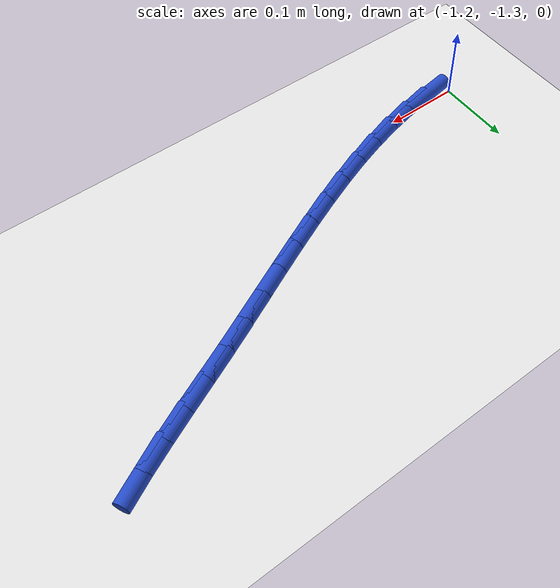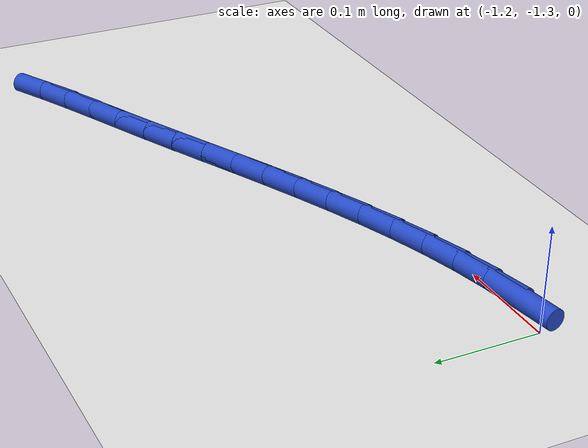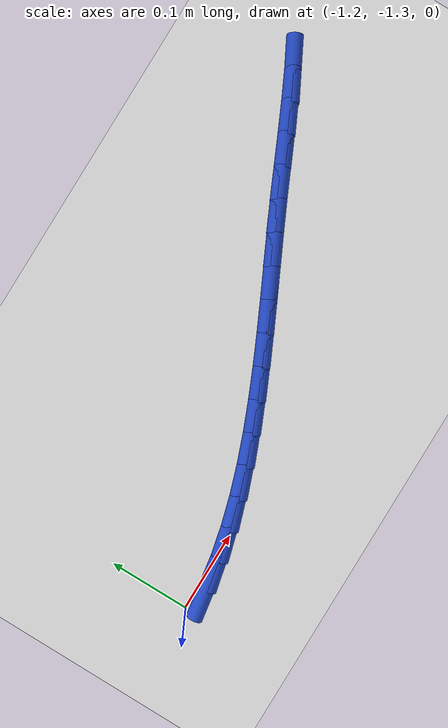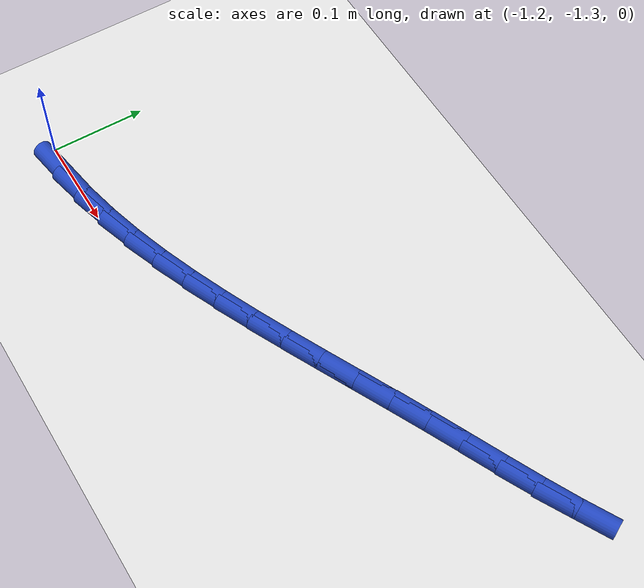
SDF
<sdf version="1.6">
 <world name="default">
  <model name="ground_plane">
   <static>1</static>
   <link name="link">
    <collision name="collision">
     <geometry><plane><normal>0 0 1</normal><size>100 100</size></plane></geometry>
     <surface><friction><ode><mu>100</mu><mu2>50</mu2></ode></friction></surface>
    </collision>
    <visual name="visual">
     <cast_shadows>0</cast_shadows>
     <geometry><plane><normal>0 0 1</normal><size>100 100</size></plane></geometry>
     <material>
      <script><uri>file://media/materials/scripts/gazebo.material</uri><name>Gazebo/WhiteGlow</name></script>
     </material>
    </visual>
   </link>
  </model>
  <model name="line">
   <link name="link_150">
    <pose>-1.161498635835793 -1.3066927074365728 0.01 0 1.57 0.16170845640949366</pose>
    <collision name="collision">
     <geometry><cylinder><radius>0.01</radius><length>0.08</length></cylinder></geometry>
    </collision>
    <visual name="visual">
     <material>
      <script><name>Gazebo/Blue</name><uri>file://media/materials/scripts/gazebo.material</uri></script>
     </material>
     <geometry><cylinder><radius>0.01</radius><length>0.08</length></cylinder></geometry>
    </visual>
   </link>
   <link name="link_151">
    <pose>-1.1255199254641324 -1.3008233962126554 0.01 0 1.57 0.22316943241584936</pose>
    <collision name="collision">
     <geometry><cylinder><radius>0.01</radius><length>0.08</length></cylinder></geometry>
    </collision>
    <visual name="visual">
     <material>
      <script><name>Gazebo/Blue</name><uri>file://media/materials/scripts/gazebo.material</uri></script>
     </material>
     <geometry><cylinder><radius>0.01</radius><length>0.08</length></cylinder></geometry>
    </visual>
   </link>
   <link name="link_152">
    <pose>-1.0896137281921183 -1.2926744949773905 0.01 0 1.57 0.2766547158146676</pose>
    <collision name="collision">
     <geometry><cylinder><radius>0.01</radius><length>0.08</length></cylinder></geometry>
    </collision>
    <visual name="visual">
     <material>
      <script><name>Gazebo/Blue</name><uri>file://media/materials/scripts/gazebo.material</uri></script>
     </material>
     <geometry><cylinder><radius>0.01</radius><length>0.08</length></cylinder></geometry>
    </visual>
   </link>
   <link name="link_153">
    <pose>-1.0537803415617388 -1.2825001102500515 0.01 0 1.57 0.3223964391644984</pose>
    <collision name="collision">
     <geometry><cylinder><radius>0.01</radius><length>0.08</length></cylinder></geometry>
    </collision>
    <visual name="visual">
     <material>
      <script><name>Gazebo/Blue</name><uri>file://media/materials/scripts/gazebo.material</uri></script>
     </material>
     <geometry><cylinder><radius>0.01</radius><length>0.08</length></cylinder></geometry>
    </visual>
   </link>
   <link name="link_154">
    <pose>-1.0180200631149803 -1.270554348549912 0.01 0 1.57 0.36074572297174184</pose>
    <collision name="collision">
     <geometry><cylinder><radius>0.01</radius><length>0.08</length></cylinder></geometry>
    </collision>
    <visual name="visual">
     <material>
      <script><name>Gazebo/Blue</name><uri>file://media/materials/scripts/gazebo.material</uri></script>
     </material>
     <geometry><cylinder><radius>0.01</radius><length>0.08</length></cylinder></geometry>
    </visual>
   </link>
   <link name="link_155">
    <pose>-0.9823331903938303 -1.257091316396245 0.01 0 1.57 0.39209347384951837</pose>
    <collision name="collision">
     <geometry><cylinder><radius>0.01</radius><length>0.08</length></cylinder></geometry>
    </collision>
    <visual name="visual">
     <material>
      <script><name>Gazebo/Blue</name><uri>file://media/materials/scripts/gazebo.material</uri></script>
     </material>
     <geometry><cylinder><radius>0.01</radius><length>0.08</length></cylinder></geometry>
    </visual>
   </link>
   <link name="link_156">
    <pose>-0.9467200209402764 -1.2423651203083246 0.01 0 1.57 0.41681523394945075</pose>
    <collision name="collision">
     <geometry><cylinder><radius>0.01</radius><length>0.08</length></cylinder></geometry>
    </collision>
    <visual name="visual">
     <material>
      <script><name>Gazebo/Blue</name><uri>file://media/materials/scripts/gazebo.material</uri></script>
     </material>
     <geometry><cylinder><radius>0.01</radius><length>0.08</length></cylinder></geometry>
    </visual>
   </link>
   <link name="link_157">
    <pose>-0.9111808522963056 -1.2266298668054236 0.01 0 1.57 0.4352354093599081</pose>
    <collision name="collision">
     <geometry><cylinder><radius>0.01</radius><length>0.08</length></cylinder></geometry>
    </collision>
    <visual name="visual">
     <material>
      <script><name>Gazebo/Blue</name><uri>file://media/materials/scripts/gazebo.material</uri></script>
     </material>
     <geometry><cylinder><radius>0.01</radius><length>0.08</length></cylinder></geometry>
    </visual>
   </link>
   <link name="link_158">
    <pose>-0.8757159820039055 -1.2101396624068157 0.01 0 1.57 0.4476053346731265</pose>
    <collision name="collision">
     <geometry><cylinder><radius>0.01</radius><length>0.08</length></cylinder></geometry>
    </collision>
    <visual name="visual">
     <material>
      <script><name>Gazebo/Blue</name><uri>file://media/materials/scripts/gazebo.material</uri></script>
     </material>
     <geometry><cylinder><radius>0.01</radius><length>0.08</length></cylinder></geometry>
    </visual>
   </link>
   <link name="link_159">
    <pose>-0.8403257076050633 -1.1931486136317746 0.01 0 1.57 0.4540903539550158</pose>
    <collision name="collision">
     <geometry><cylinder><radius>0.01</radius><length>0.08</length></cylinder></geometry>
    </collision>
    <visual name="visual">
     <material>
      <script><name>Gazebo/Blue</name><uri>file://media/materials/scripts/gazebo.material</uri></script>
     </material>
     <geometry><cylinder><radius>0.01</radius><length>0.08</length></cylinder></geometry>
    </visual>
   </link>
   <link name="link_160">
    <pose>-0.8050103266417663 -1.1759108269995737 0.01 0 1.57 0.4547623456773114</pose>
    <collision name="collision">
     <geometry><cylinder><radius>0.01</radius><length>0.08</length></cylinder></geometry>
    </collision>
    <visual name="visual">
     <material>
      <script><name>Gazebo/Blue</name><uri>file://media/materials/scripts/gazebo.material</uri></script>
     </material>
     <geometry><cylinder><radius>0.01</radius><length>0.08</length></cylinder></geometry>
    </visual>
   </link>
   <link name="link_161">
    <pose>-0.7697701366560016 -1.158680409029486 0.01 0 1.57 0.4495953938450482</pose>
    <collision name="collision">
     <geometry><cylinder><radius>0.01</radius><length>0.08</length></cylinder></geometry>
    </collision>
    <visual name="visual">
     <material>
      <script><name>Gazebo/Blue</name><uri>file://media/materials/scripts/gazebo.material</uri></script>
     </material>
     <geometry><cylinder><radius>0.01</radius><length>0.08</length></cylinder></geometry>
    </visual>
   </link>
   <link name="link_162">
    <pose>-0.7346054351897565 -1.1417114662407852 0.01 0 1.57 0.4392158581749533</pose>
    <collision name="collision">
     <geometry><cylinder><radius>0.01</radius><length>0.08</length></cylinder></geometry>
    </collision>
    <visual name="visual">
     <material>
      <script><name>Gazebo/Blue</name><uri>file://media/materials/scripts/gazebo.material</uri></script>
     </material>
     <geometry><cylinder><radius>0.01</radius><length>0.08</length></cylinder></geometry>
    </visual>
   </link>
   <link name="link_163">
    <pose>-0.6995264623985878 -1.1252305599004215 0.01 0 1.57 0.4334035500368881</pose>
    <collision name="collision">
     <geometry><cylinder><radius>0.01</radius><length>0.08</length></cylinder></geometry>
    </collision>
    <visual name="visual">
     <material>
      <script><name>Gazebo/Blue</name><uri>file://media/materials/scripts/gazebo.material</uri></script>
     </material>
     <geometry><cylinder><radius>0.01</radius><length>0.08</length></cylinder></geometry>
    </visual>
   </link>
   <link name="link_164">
    <pose>-0.6646739706783711 -1.1091026770709411 0.01 0 1.57 0.43934966767067496</pose>
    <collision name="collision">
     <geometry><cylinder><radius>0.01</radius><length>0.08</length></cylinder></geometry>
    </collision>
    <visual name="visual">
     <material>
      <script><name>Gazebo/Blue</name><uri>file://media/materials/scripts/gazebo.material</uri></script>
     </material>
     <geometry><cylinder><radius>0.01</radius><length>0.08</length></cylinder></geometry>
    </visual>
   </link>
   <link name="link_165">
    <pose>-0.6302805917689183 -1.0929382601024342 0.01 0 1.57 0.4575987462990594</pose>
    <collision name="collision">
     <geometry><cylinder><radius>0.01</radius><length>0.08</length></cylinder></geometry>
    </collision>
    <visual name="visual">
     <material>
      <script><name>Gazebo/Blue</name><uri>file://media/materials/scripts/gazebo.material</uri></script>
     </material>
     <geometry><cylinder><radius>0.01</radius><length>0.08</length></cylinder></geometry>
    </visual>
   </link>
   <link name="link_166">
    <pose>-0.5965808738113806 -1.0763424421012882 0.01 0 1.57 0.48862476041999364</pose>
    <collision name="collision">
     <geometry><cylinder><radius>0.01</radius><length>0.08</length></cylinder></geometry>
    </collision>
    <visual name="visual">
     <material>
      <script><name>Gazebo/Blue</name><uri>file://media/materials/scripts/gazebo.material</uri></script>
     </material>
     <geometry><cylinder><radius>0.01</radius><length>0.08</length></cylinder></geometry>
    </visual>
   </link>
  </model>
 </world>
</sdf>
